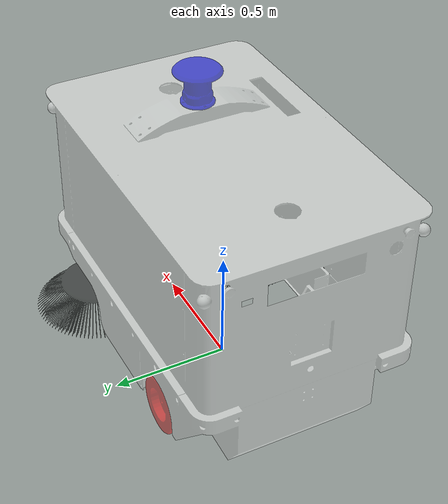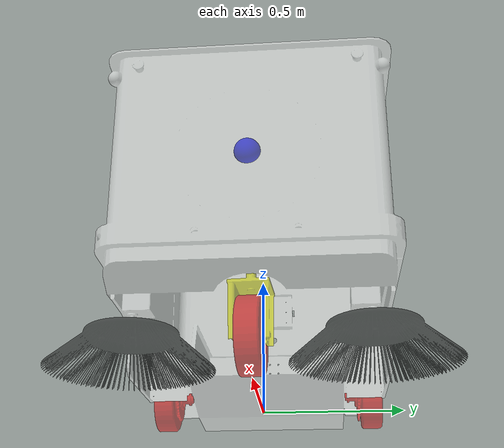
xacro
<robot name="cleaning_robot"
    xmlns:xacro="http://wiki.ros.org/xacro">
    <xacro:include filename="$(find cleaningrobot_description)/urdf/includes/materials.urdf.xacro"/>

    <xacro:property name="robot_namespace" value="/steer_bot"/>

    <gazebo>
        <plugin name="gazebo_ros_control" filename="libgazebo_ros_control.so">
            <legacyModeNS>true</legacyModeNS>
            <robotSimType>gazebo_ros_control/DefaultRobotHWSim</robotSimType>
        </plugin>
    </gazebo>

    <xacro:include filename="base_link.urdf.xacro" />
    <xacro:include filename="rslidar_16.urdf.xacro" />
    <xacro:include filename="bpearl.urdf.xacro" />
    <xacro:include filename="front_wheel.urdf.xacro" />
    <xacro:include filename="left_wheel.urdf.xacro" />
    <xacro:include filename="right_wheel.urdf.xacro" />
    <xacro:include filename="left_brush.urdf.xacro" />
    <xacro:include filename="right_brush.urdf.xacro" />

</robot>

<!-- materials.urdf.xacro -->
<robot xmlns:xacro="http://ros.org/wiki/xacro">

    <!-- ====================================================
                           Material Colors
     ========================================================= -->

    <xacro:macro name="color_material" params="color">

        <xacro:if value="${color == 'black'}">
            <material name="black">
                <color rgba="0.0 0.0 0.0 0.5"/>
            </material>
        </xacro:if>

        <xacro:if value="${color == 'white'}">
            <material name="white">
                <color rgba="1.0 1.0 1.0 0.5"/>
            </material>
        </xacro:if>

        <xacro:if value="${color == 'grey'}">
            <material name="grey">
                <color rgba="0.6 0.6 0.6 0.5"/>
            </material>
        </xacro:if>

        <xacro:if value="${color == 'orange'}">
            <material name="orange">
                <color rgba="1.0 0.8 0.0 0.5"/>
            </material>
        </xacro:if>

        <xacro:if value="${color == 'yellow'}">
            <material name="yellow">
                <color rgba="1.0 1.0 0.0 0.5"/>
            </material>
        </xacro:if>

        <xacro:if value="${color == 'green'}">
            <material name="green">
                <color rgba="0.0 1.0 0.0 0.5"/>
            </material>
        </xacro:if>

        <xacro:if value="${color == 'blue'}">
            <material name="blue">
                <color rgba="0.0 0.0 1.0 0.5"/>
            </material>
        </xacro:if>

        <xacro:if value="${color == 'brown'}">
            <material name="brown">
                <color rgba="0.6 0.4 0.08 0.5"/>
            </material>
        </xacro:if>

        <xacro:if value="${color == 'purple'}">
            <material name="purple">
                <color rgba="0.5 0.0 0.5 0.5"/>
            </material>
        </xacro:if>

        <xacro:if value="${color == 'red'}">
            <material name="red">
                <color rgba="1.0 0.0 0.0 0.5"/>
            </material>
        </xacro:if>
    </xacro:macro>

    <!-- ====================================================
                           Gazebo Colors
     ========================================================= -->
    <xacro:macro name="color_gazebo" params="parent color">
        <gazebo reference="${parent}">
            <xacro:if value="${color == 'black'}">
                <material value="Gazebo/Black"/>
            </xacro:if>

            <xacro:if value="${color == 'white'}">
                <material value="Gazebo/White"/>
            </xacro:if>

            <xacro:if value="${color == 'grey'}">
                <material value="Gazebo/Grey"/>
            </xacro:if>

            <xacro:if value="${color == 'orange'}">
                <material value="Gazebo/Orange"/>
            </xacro:if>

            <xacro:if value="${color == 'yellow'}">
                <material value="Gazebo/Yellow"/>
            </xacro:if>

            <xacro:if value="${color == 'green'}">
                <material value="Gazebo/Green"/>
            </xacro:if>

            <xacro:if value="${color == 'blue'}">
                <material value="Gazebo/Blue"/>
            </xacro:if>

            <xacro:if value="${color == 'brown'}">
                <material value="Gazebo/Brown"/>
            </xacro:if>

            <xacro:if value="${color == 'purple'}">
                <material value="Gazebo/Purple"/>
            </xacro:if>

            <xacro:if value="${color == 'red'}">
                <material value="Gazebo/Red"/>
            </xacro:if>
        </gazebo>
    </xacro:macro>

</robot>

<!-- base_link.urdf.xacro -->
<robot xmlns:xacro="http://www.ros.org/wiki/xacro">
    <link name="base_footprint">
        <visual>
            <origin xyz="0 0 0" rpy="0 0 0" />
            <geometry>
                <mesh filename="package://cleaningrobot_description/meshes/base_footprint.STL" />
            </geometry>
            <xacro:color_material color="yellow"/>
        </visual>
        <collision>
            <origin xyz="0 0 0" rpy="0 0 0" />
            <geometry>
                <mesh filename="package://cleaningrobot_description/meshes/base_footprint.STL" />
            </geometry>
        </collision>
    </link>
    <link name="base_link">
        <inertial>
            <origin xyz="0 0 0.2541" rpy="0 0 0" />
            <mass value="24.9682" />
            <inertia ixx="1.4912" ixy="-0.0134" ixz="0.0072" iyy="2.6163" iyz="-0.0002" izz="3.5498" />
        </inertial>
        <visual>
            <origin xyz="0 0 0" rpy="0 0 0" />
            <geometry>
                <mesh filename="package://cleaningrobot_description/meshes/base_link.STL" />
            </geometry>
            <xacro:color_material color="white"/>

        </visual>
        <collision>
            <origin xyz="0 0 0" rpy="0 0 0" />
            <geometry>
                <mesh filename="package://cleaningrobot_description/meshes/base_link.STL" />
            </geometry>
        </collision>
    </link>
    <joint name="base_footprint2base_link" type="fixed">
        <origin xyz="0 0 0.53363" rpy="0 0 0" />
        <parent link="base_footprint" />
        <child link="base_link" />
        <axis xyz="0 0 0" />
    </joint>

    <!-- ultra sonar -->

    <link name="sonar1"></link>
  <joint
    name="baselink2sonar1"
    type="fixed">
    <origin
      xyz="0.7315 -0.156 -0.13812"
      rpy="-1.5708 0 -1.5708" />
    <parent
      link="base_link" />
    <child
      link="sonar1" />
    <axis
      xyz="0 0 0" />
  </joint>
  <link
    name="sonar2">
  </link>
  <joint
    name="baselink2sonar2"
    type="fixed">
    <origin
      xyz="0.489 -0.4765 -0.13812"
      rpy="-1.5708 0 3.1416" />
    <parent
      link="base_link" />
    <child
      link="sonar2" />
    <axis
      xyz="0 0 0" />
  </joint>
  <link
    name="sonar3">
  </link>
  <joint
    name="baselink_sonar3"
    type="fixed">
    <origin
      xyz="0.069 -0.4765 -0.13812"
      rpy="-1.5708 0 3.1416" />
    <parent
      link="base_link" />
    <child
      link="sonar3" />
    <axis
      xyz="0 0 0" />
  </joint>
  <link
    name="sonar4">
  </link>
  <joint
    name="baselink2sonar4"
    type="fixed">
    <origin
      xyz="-0.351 -0.4765 -0.13812"
      rpy="-1.5708 0 3.1416" />
    <parent
      link="base_link" />
    <child
      link="sonar4" />
    <axis
      xyz="0 0 0" />
  </joint>
  <link
    name="sonar5">
  </link>
  <joint
    name="baselink2sonar5"
    type="fixed">
    <origin
      xyz="-0.7315 -0.3225 -0.13812"
      rpy="-1.5708 0 1.5708" />
    <parent
      link="base_link" />
    <child
      link="sonar5" />
    <axis
      xyz="0 0 0" />
  </joint>
  <link
    name="sonar6">
  </link>
  <joint
    name="baselink2sonar6"
    type="fixed">
    <origin
      xyz="-0.7315 0.3225 -0.13812"
      rpy="-1.5708 0 1.5708" />
    <parent
      link="base_link" />
    <child
      link="sonar6" />
    <axis
      xyz="0 0 0" />
  </joint>
  <link
    name="sonar7">
  </link>
  <joint
    name="baselink2sonar7"
    type="fixed">
    <origin
      xyz="-0.351 0.4765 -0.13812"
      rpy="-1.5708 0 0" />
    <parent
      link="base_link" />
    <child
      link="sonar7" />
    <axis
      xyz="0 0 0" />
  </joint>
  <link
    name="sonar8">
  </link>
  <joint
    name="baselink2sonar8"
    type="fixed">
    <origin
      xyz="0.069 0.4765 -0.13812"
      rpy="-1.5708 0 0" />
    <parent
      link="base_link" />
    <child
      link="sonar8" />
    <axis
      xyz="0 0 0" />
  </joint>
  <link
    name="sonar9">
  </link>
  <joint
    name="baselink2sonar9"
    type="fixed">
    <origin
      xyz="0.489 0.4765 -0.13812"
      rpy="-1.5708 0 0" />
    <parent
      link="base_link" />
    <child
      link="sonar9" />
    <axis
      xyz="0 0 0" />
  </joint>
  <link
    name="sonar10">
  </link>
  <joint
    name="baselink2sonar10"
    type="fixed">
    <origin
      xyz="0.7315 0.156 -0.13812"
      rpy="-1.5708 0 -1.5708" />
    <parent
      link="base_link" />
    <child
      link="sonar10" />
    <axis
      xyz="0 0 0" />
  </joint>
    <!-- ultra sonar -->

    <gazebo>
        <plugin name="p3d_base_controller" filename="libgazebo_ros_p3d.so">
            <alwaysOn>true</alwaysOn>
            <updateRate>50.0</updateRate>
            <bodyName>base_footprint</bodyName>
            <topicName>odom_basefootprint</topicName>
            <gaussianNoise>0.0</gaussianNoise>
            <frameName>world</frameName>
            <xyzOffsets>0 0 0</xyzOffsets>
            <rpyOffsets>0 0 0</rpyOffsets>
        </plugin>
    </gazebo>

</robot>

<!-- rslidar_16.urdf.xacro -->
<robot xmlns:xacro="http://www.ros.org/wiki/xacro">

    <xacro:property name="PI" value = "3.1415926"/>

    <link name="rslidar16">
        <inertial>
            <origin xyz="0 0.0228 0" rpy="0 0 0" />
            <mass value="1.4933" />
            <inertia ixx="0.0022" ixy="0" ixz="0" iyy="0.0040" iyz="0" izz="0.0021" />
        </inertial>
        <visual>
            <origin xyz="0 0 0" rpy="0 0 0" />
            <geometry>
                <mesh filename="package://cleaningrobot_description/meshes/lidar16.STL" />
            </geometry>
            <xacro:color_material color="blue"/>
        </visual>
        <collision>
            <origin xyz="0 0 0" rpy="0 0 0" />
            <geometry>
                <mesh filename="package://cleaningrobot_description/meshes/lidar16.STL" />
            </geometry>
        </collision>
    </link>
    <joint name="base_link2eslidar16" type="fixed">
        <origin xyz="0.2334 0 0.6779" rpy="${PI/2} 0 0" />
        <parent link="base_link" />
        <child link="rslidar16" />
        <axis xyz="0 0 0" />
    </joint>
    <gazebo reference="rslidar16">
        <material>Gazebo/Blue</material>
    </gazebo>
</robot>

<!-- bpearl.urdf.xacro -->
<robot xmlns:xacro="http://www.ros.org/wiki/xacro">

    <xacro:property name="PI" value = "3.1415926"/>

    <link name="bpearl">
        <inertial>
            <origin xyz="0 0 0.0159" rpy="0 0 0" />
            <mass value="0.0252" />
            <inertia ixx="0" ixy="0" ixz="0" iyy="0" iyz="0" izz="0" />
        </inertial>
        <visual>
            <origin xyz="0 0 0" rpy="0 0 0" />
            <geometry>
                <mesh filename="package://cleaningrobot_description/meshes/bpearl.STL" />
            </geometry>
            <xacro:color_material color="blue"/>
        </visual>
        <collision>
            <origin xyz="0 0 0" rpy="0 0 0" />
            <geometry>
                <mesh filename="package://cleaningrobot_description/meshes/bpearl.STL" />
            </geometry>
        </collision>
    </link>
    <joint name="base_link2bpearl" type="fixed">
        <origin xyz="0.7015 0 0.1441" rpy="${PI/2} 0 ${PI/2}" />
        <parent link="base_link" />
        <child link="bpearl" />
        <axis xyz="0 0 0" />
    </joint>
    <gazebo reference="bpearl">
        <material>Gazebo/Blue</material>
    </gazebo>
</robot>

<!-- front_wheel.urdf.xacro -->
<robot xmlns:xacro="http://www.ros.org/wiki/xacro">
    <xacro:property name="PI" value = "3.1415926"/>

    <link name="front_link">
        <inertial>
            <origin xyz="0 0 0.1380" rpy="0 0 0" />
            <mass value="0.6742" />
            <inertia ixx="0.0016" ixy="0" ixz="0" iyy="0.0021" iyz="0" izz="0.0011" />
        </inertial>
        <visual>
            <origin xyz="0 0 0" rpy="0 0 0" />
            <geometry>
                <mesh filename="package://cleaningrobot_description/meshes/front_link.STL" />
            </geometry>
            <xacro:color_material color="yellow"/>
        </visual>
        <collision>
            <origin xyz="0 0 0" rpy="0 0 0" />
            <geometry>
                <mesh filename="package://cleaningrobot_description/meshes/front_link.STL" />
            </geometry>
        </collision>
    </link>
    <joint name="base_link2front_link" type="revolute">
        <origin xyz="0.55 0 -0.1467" rpy="${-PI} 0 0" />
        <parent link="base_link" />
        <child link="front_link" />
        <axis xyz="0 0 1" />
        <limit lower="-0.7" upper="0.7" effort="10" velocity="3" />
    </joint>
    <transmission name="ackermann_steering_joint_transmission">
        <type>transmission_interface/SimpleTransmission</type>
        <joint name="base_link2front_link">
            <hardwareInterface>hardware_interface/PositionJointInterface</hardwareInterface>
        </joint>
        <actuator name="ackermann_steering_motor">
            <mechanicalReduction>1</mechanicalReduction>
        </actuator>
    </transmission>

    <link name="front_wheel">
        <inertial>
            <origin xyz="0 0 0" rpy="0 0 0" />
            <mass value="2.6850" />
            <inertia ixx="0.01420" ixy="0" ixz="0" iyy="0.0260" iyz="0" izz="0.0142" />
        </inertial>
        <visual>
            <origin xyz="0 0 0" rpy="0 0 0" />
            <geometry>
                <mesh filename="package://cleaningrobot_description/meshes/front_wheel.STL" />
            </geometry>
            <xacro:color_material color="red"/>
        </visual>
        <collision>
            <origin xyz="0 0 0" rpy="0 0 0" />
            <geometry>
                <mesh filename="package://cleaningrobot_description/meshes/front_wheel.STL" />
            </geometry>
        </collision>
    </link>
    <joint name="front_wheel_joint" type="continuous">
        <origin xyz="0 0 0.26695" rpy="0 ${PI/2} 0" />
        <parent link="front_link" />
        <child link="front_wheel" />
        <axis xyz="0 -0.9984 0.056559" />
        <limit effort="100" velocity="100"/>
        <safety_controller k_velocity="10" />
    </joint>

    <transmission name="ackermann_traction_joint_transmission">
        <type>transmission_interface/SimpleTransmission</type>
        <joint name="front_wheel_joint">
            <hardwareInterface>hardware_interface/VelocityJointInterface</hardwareInterface>
        </joint>
        <actuator name="ackermann_traction_motor">
            <mechanicalReduction>1</mechanicalReduction>
        </actuator>
    </transmission>

    <gazebo reference="front_wheel">
        <mu1 value="100"/>
        <mu2 value="100"/>
    </gazebo>
    <gazebo reference="front_link">
        <material>Gazebo/Yellow</material>
    </gazebo>
</robot>

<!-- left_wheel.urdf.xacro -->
<robot xmlns:xacro="http://www.ros.org/wiki/xacro">
    <xacro:property name="PI" value = "3.1415926"/>

    <link name="left_wheel">
        <inertial>
            <origin xyz="0 0 0" rpy="0 0 0" />
            <mass value="3.2115" />
            <inertia ixx="0.0150" ixy="0" ixz="0" iyy="0.0150" iyz="0" izz="0.0275" />
        </inertial>
        <visual>
            <origin xyz="0 0 0" rpy="0 0 0" />
            <geometry>
                <mesh filename="package://cleaningrobot_description/meshes/left_wheel.STL" />
            </geometry>
            <xacro:color_material color="red"/>
        </visual>
        <collision>
            <origin xyz="0 0 0" rpy="0 0 0" />
            <geometry>
                <mesh filename="package://cleaningrobot_description/meshes/left_wheel.STL" />
            </geometry>
        </collision>
    </link>
    <joint name="rear_left_wheel_joint" type="continuous">
        <origin xyz="-0.2865 0.403 -0.41363" rpy="${PI/2} 0 0" />
        <parent link="base_link" />
        <child link="left_wheel" />
        <axis xyz="0 0 -1" />
    </joint>
    <gazebo reference="left_wheel">
        <material>Gazebo/Red</material>
        <mu1>200</mu1>
        <mu2>200</mu2>
        <fdir1>1 0 0</fdir1>
        <kp value="10000000.0"/>
        <kd value="1.0"/>
    </gazebo>
</robot>

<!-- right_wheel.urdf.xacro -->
<robot xmlns:xacro="http://www.ros.org/wiki/xacro">
    <xacro:property name="PI" value = "3.1415926"/>

    <link name="right_wheel">
        <inertial>
            <origin xyz="0 0 0" rpy="0 0 0" />
            <mass value="3.2115" />
            <inertia ixx="0.0150" ixy="0" ixz="0" iyy="0.0150" iyz="0" izz="0.0272" />
        </inertial>
        <visual>
            <origin xyz="0 0 0" rpy="0 0 0" />
            <geometry>
                <mesh filename="package://cleaningrobot_description/meshes/right_wheel.STL" />
            </geometry>
            <xacro:color_material color="red"/>
        </visual>
        <collision>
            <origin xyz="0 0 0" rpy="0 0 0" />
            <geometry>
                <mesh filename="package://cleaningrobot_description/meshes/right_wheel.STL" />
            </geometry>
        </collision>
    </link>
    <joint name="rear_right_wheel_joint" type="continuous">
        <origin xyz="-0.2865 -0.403 -0.41363" rpy="${PI/2} 0 0" />
        <parent link="base_link" />
        <child link="right_wheel" />
        <axis xyz="0 0 -1" />
    </joint>
    <gazebo reference="right_wheel">
        <material>Gazebo/Red</material>
        <mu1>200</mu1>
        <mu2>200</mu2>
        <fdir1>1 0 0</fdir1>
        <kp value="10000000.0"/>
        <kd value="1.0"/>
    </gazebo>
</robot>

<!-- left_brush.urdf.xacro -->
<robot xmlns:xacro="http://www.ros.org/wiki/xacro">

    <xacro:property name="PI" value = "3.1415926"/>

    <link name="left_brush">
        <inertial>
            <origin xyz="0 0 0.0164" rpy="0 0 0" />
            <mass value="16.765" />
            <inertia ixx="0.0122" ixy="0" ixz="0" iyy="0.0122" iyz="0" izz="0.0231" />
        </inertial>
        <visual>
            <origin xyz="0 0 0" rpy="0 0 0" />
            <geometry>
                <mesh filename="package://cleaningrobot_description/meshes/left_brush.STL" />
            </geometry>
            <xacro:color_material color="black"/>
        </visual>
        <collision>
            <origin xyz="0 0 0" rpy="0 0 0" />
            <geometry>
                <mesh filename="package://cleaningrobot_description/meshes/left_brush.STL" />
            </geometry>
        </collision>
    </link>
    <joint name="base_link2left_brush" type="continuous">
        <origin xyz="0.5260 0.377 -0.3744" rpy="${-PI} 0 ${PI/2}" />
        <parent link="base_link" />
        <child link="left_brush" />
        <axis xyz="0 0 1" />
    </joint>
    <gazebo reference="left_brush">
        <material>Gazebo/Black</material>
    </gazebo>
</robot>

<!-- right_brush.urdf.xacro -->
<robot xmlns:xacro="http://www.ros.org/wiki/xacro">
    <xacro:property name="PI" value = "3.1415926"/>

    <link name="right_brush">
        <inertial>
            <origin xyz="0 0 0.0164" rpy="0 0 0" />

            <mass value="16.765" />

            <inertia ixx="0.0122" ixy="0" ixz="0" iyy="0.0122" iyz="0" izz="0.0231" />
        </inertial>
        <visual>
            <origin xyz="0 0 0" rpy="0 0 0" />
            <geometry>
                <mesh filename="package://cleaningrobot_description/meshes/right_brush.STL" />
            </geometry>
            <xacro:color_material color="black"/>
        </visual>
        <collision>
            <origin xyz="0 0 0" rpy="0 0 0" />
            <geometry>
                <mesh filename="package://cleaningrobot_description/meshes/right_brush.STL" />
            </geometry>
        </collision>
    </link>
    <joint name="base_link2right_brush" type="continuous">
        <origin xyz="0.5260 -0.377 -0.3744" rpy="${PI} 0 ${PI/2}" />
        <parent link="base_link" />
        <child link="right_brush" />
        <axis xyz="0 0 1" />
    </joint>
    <gazebo reference="right_brush">
        <material>Gazebo/Black</material>
    </gazebo>
</robot>
